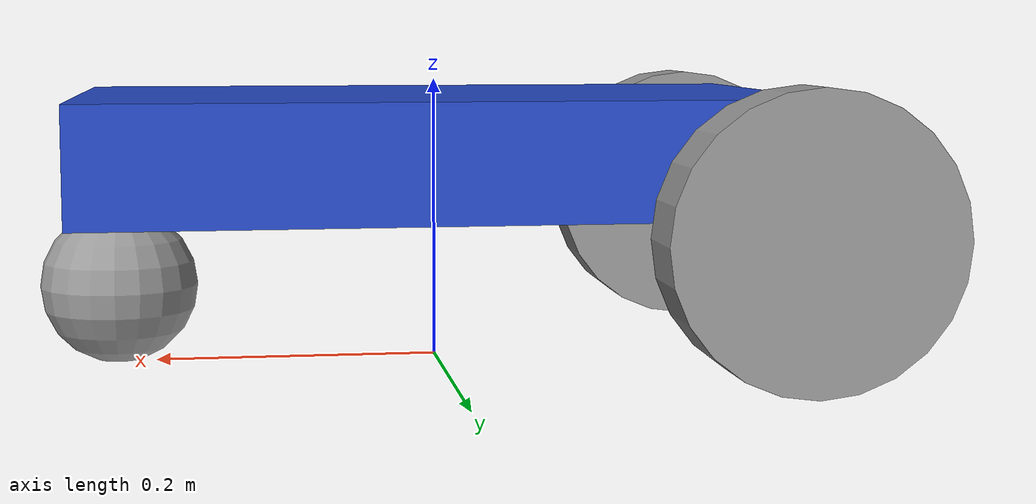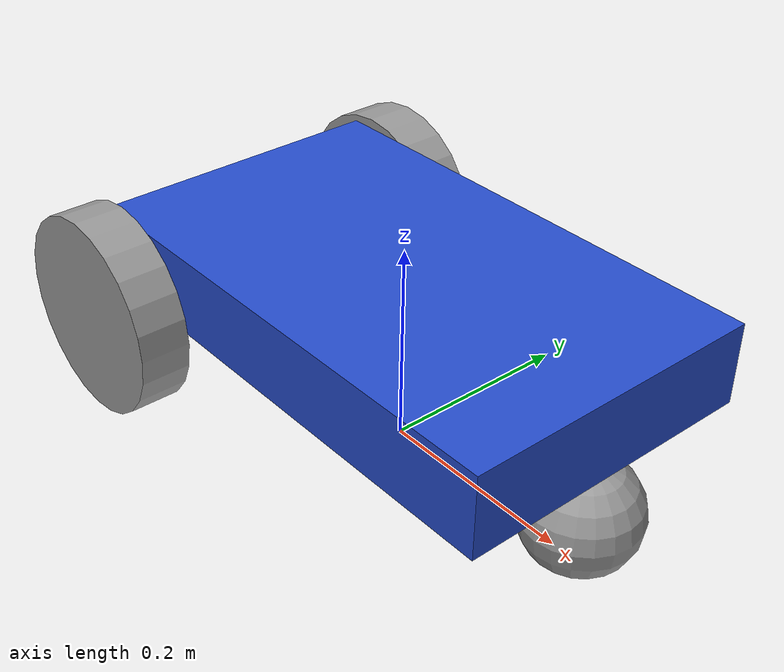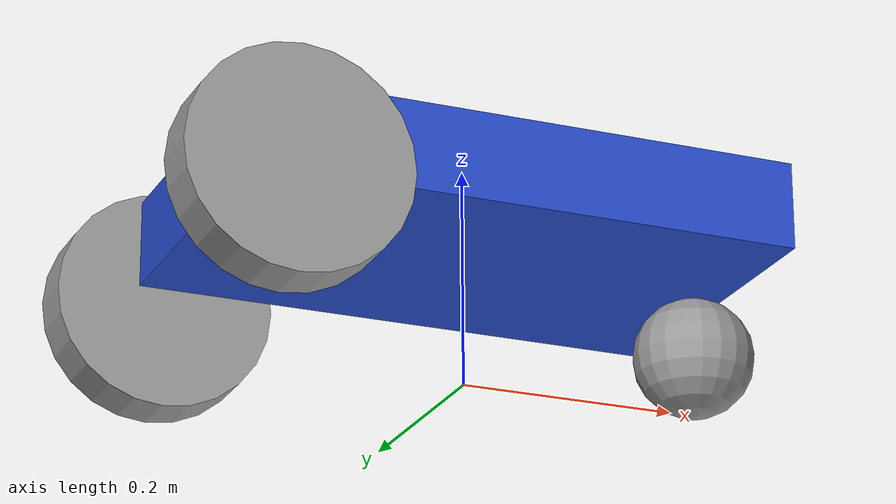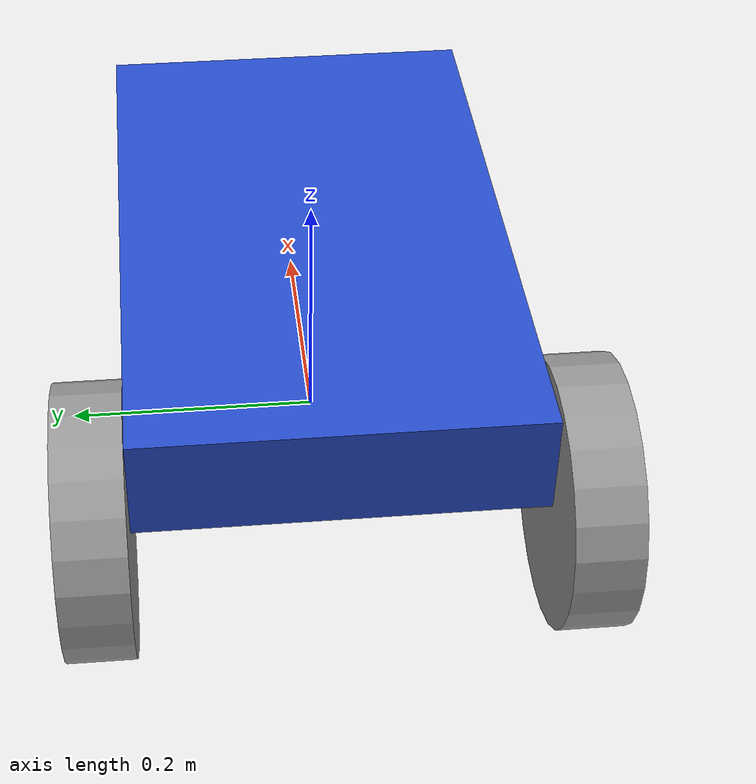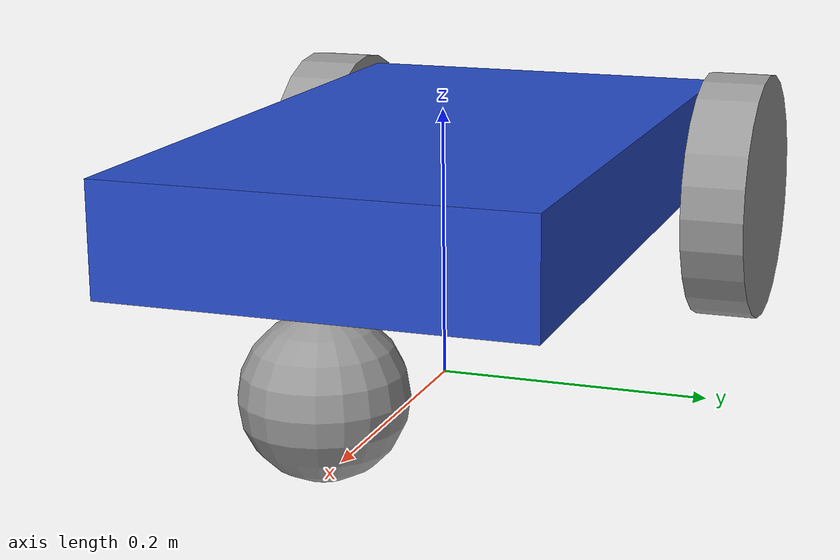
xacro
<?xml version="1.0"?>
<robot xmlns:xacro="http://www.ros.org/wiki/xacro">

    <xacro:property name="base_length" value="0.5" />
    <xacro:property name="base_width" value="0.3" />
    <xacro:property name="base_height" value="0.08" />
    <xacro:property name="wheel_radius" value="0.1" />
    <xacro:property name="wheel_length" value="0.05" />
    <xacro:property name="caster_wheel_radius" value="0.055" />

    <!-- base_footprint (projection of base_link on the ground) -->

    <link name="base_footprint"/>

    <joint name="base_joint" type="fixed">
        <parent link="base_footprint"/>
        <child link="base_link"/>
        <origin xyz="0 0 0.15" rpy="0 0 0"/>
    </joint>

    <!-- base_link and base_scan (required for Nav2) -->

    <link name="base_link">
        <visual>
            <geometry>
                <box size="${base_length} ${base_width} ${base_height}" />
            </geometry>
            <origin xyz="0 0 0" rpy="0 0 0" />
            <material name="blue" />
        </visual>
        <collision>
            <geometry>
                <box size="${base_length} ${base_width} ${base_height}" />
            </geometry>
            <origin xyz="0 0 0" rpy="0 0 0" />
        </collision>

        <xacro:box_inertia m="10.0" l="${2*base_length}" w="${2*base_width}" h="${2*base_height}"
                           xyz="0 0 0" rpy="0 0 0" />
    </link>

    <link name="caster_wheel_link">
        <visual>
            <geometry>
                <sphere radius="${caster_wheel_radius}" />
            </geometry>
            <origin xyz="0 0 0" rpy="0 0 0" />
            <material name="grey" />
        </visual>
        <collision>
            <geometry>
                <sphere radius="${caster_wheel_radius}" />
            </geometry>
            <origin xyz="0 0 0" rpy="0 0 0" />
        </collision>
        <xacro:sphere_inertia m="0.5" r="${2*caster_wheel_radius / 2.0}"
                              xyz="0 0 0" rpy="0 0 0" />
    </link>

    <gazebo reference="caster_wheel_link">
        <material>Gazebo/Grey</material>
        <mu1 value="0.001"/>
        <mu2 value="0.001"/>
    </gazebo>

    <!-- Wheels (2 differential wheels and caster wheel) -->

    <xacro:macro name="wheel_link" params="prefix">
        <link name="${prefix}_wheel">
            <visual>
                <geometry>
                    <cylinder radius="${wheel_radius}" length="${wheel_length}"/>
                </geometry>
                <origin xyz="0 0 0" rpy="${pi /2.0} 0 0" />
                <material name="grey" />
            </visual>
            <collision>
                <geometry>
                    <cylinder radius="${wheel_radius}" length="${wheel_length}"/>
                </geometry>
                <origin xyz="0 0 0" rpy="${pi /2.0} 0 0" />
            </collision>
            <xacro:cylinder_inertia m="0.5" r="${2*wheel_radius}" h="${2*wheel_length}"
                                    xyz="0 0 0" rpy="${pi /2.0} 0 0" />
        </link>
    </xacro:macro>

    <joint name="base_rl_wheel_joint" type="continuous">
        <parent link="base_link"/>
        <child link="rl_wheel"/>
        <origin xyz="-0.225 ${(base_width + wheel_length) / 2.0} -0.05" rpy="0 0 0"/>
        <axis xyz="0 1 0"/>
    </joint>

    <xacro:wheel_link prefix="rl" />

    <joint name="base_rr_wheel_joint" type="continuous">
        <parent link="base_link"/>
        <child link="rr_wheel"/>
        <origin xyz="-0.225  ${-(base_width + wheel_length) / 2.0} -0.05" rpy="0 0 0"/>
        <axis xyz="0 1 0"/>
    </joint>

    <xacro:wheel_link prefix="rr" />

    <joint name="base_caster_wheel_joint" type="fixed">
        <parent link="base_link" />
        <child link="caster_wheel_link" />
        <origin xyz="0.225 0 -0.095" rpy="0 0 0" />
    </joint>

</robot>
